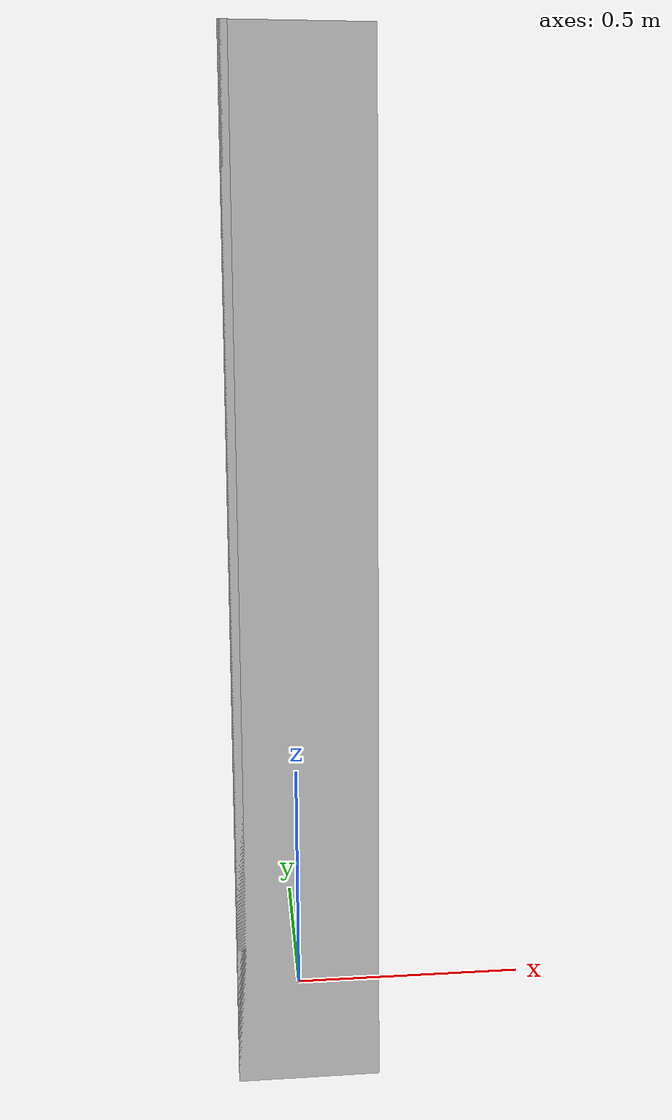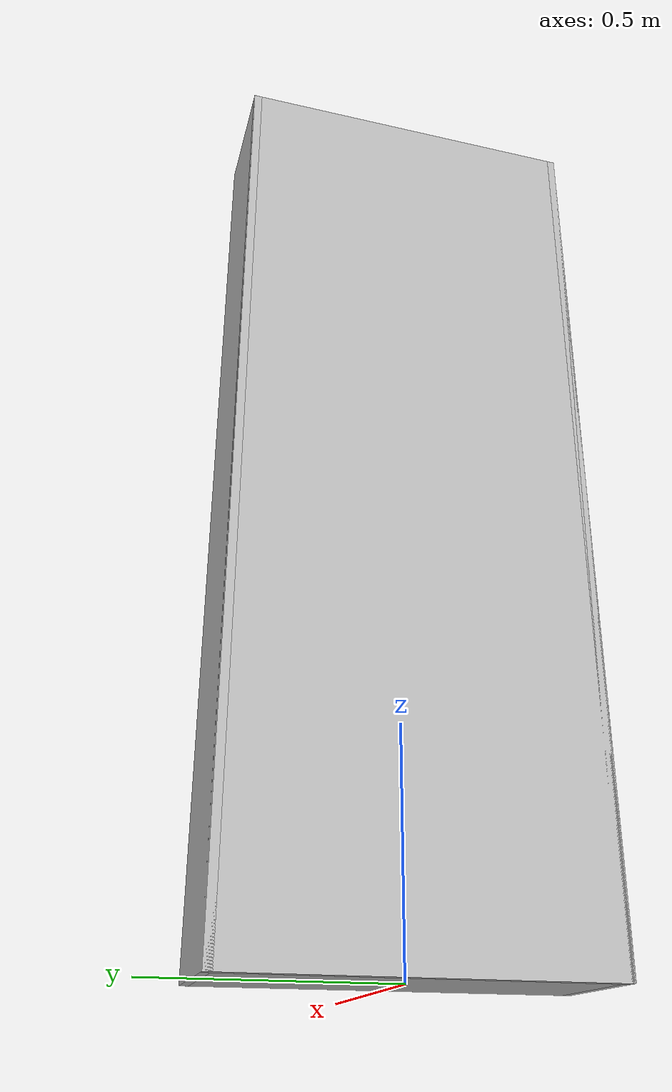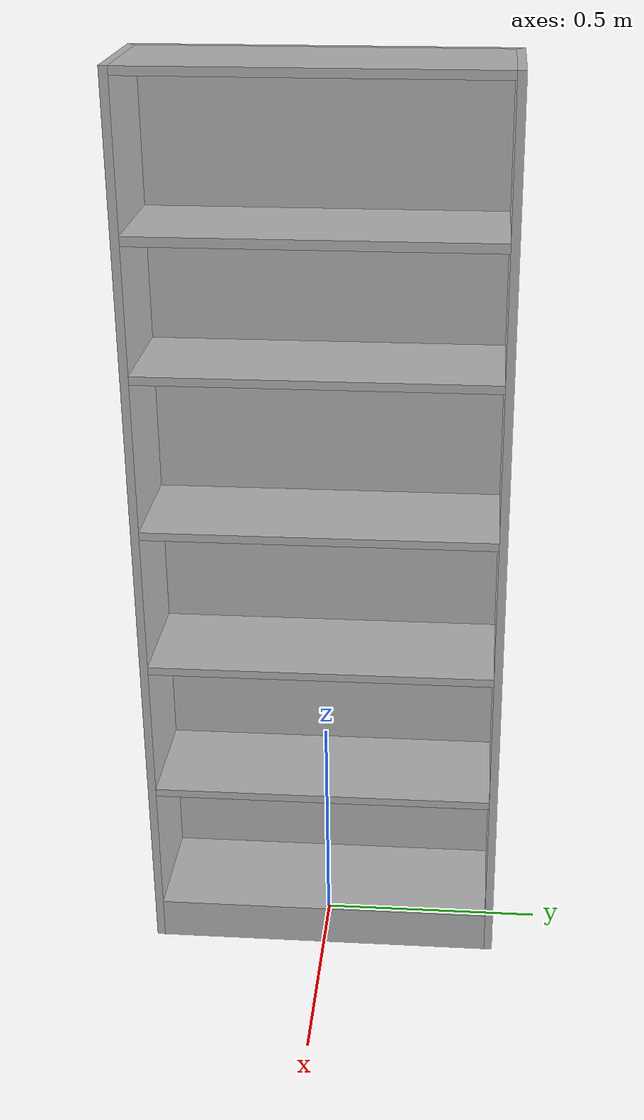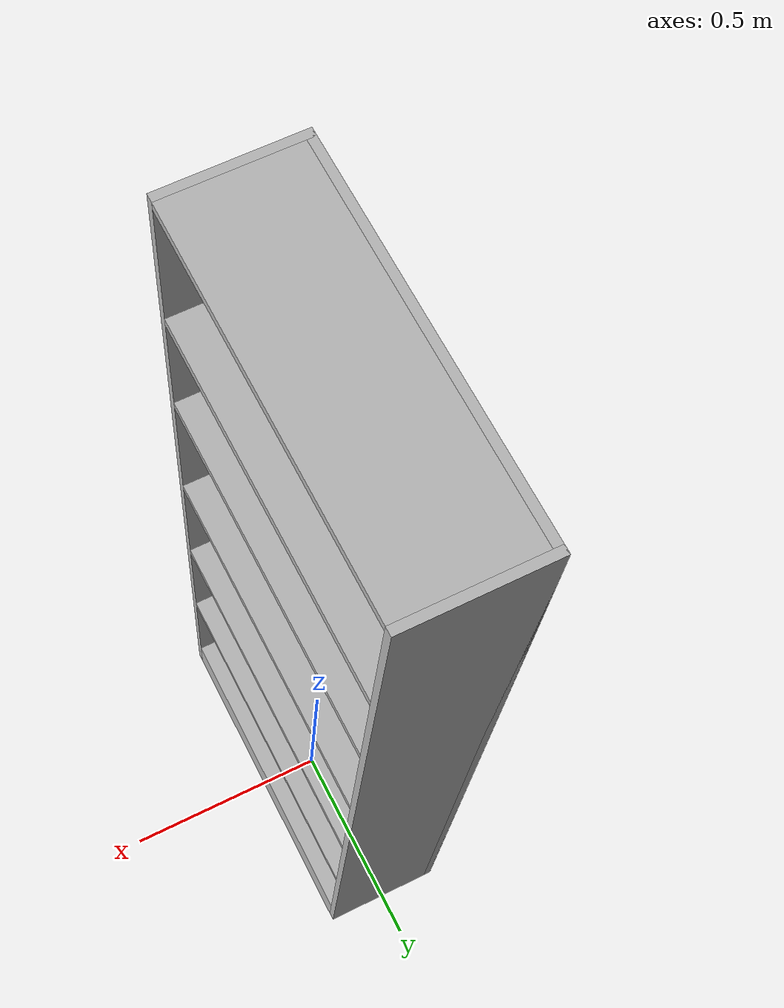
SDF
<?xml version="1.0" ?>
<sdf version="1.6">
  <model name="rwc2024/kitchen_cabinet">
    <static>true</static>
    <link name="1_link">
      <collision name="1_col">
        <geometry>
          <box>
            <size>0.28 0.018 2.02</size>
          </box>
        </geometry>
      </collision>
      <visual name="1_vis">
        <geometry>
          <box>
            <size>0.28 0.018 2.02</size>
          </box>
        </geometry>
      </visual>
      <pose>0.0 -0.391 1.01 0 0 0</pose>
    </link>
    <link name="2_link">
      <collision name="2_col">
        <geometry>
          <box>
            <size>0.28 0.018 2.02</size>
          </box>
        </geometry>
      </collision>
      <visual name="2_vis">
        <geometry>
          <box>
            <size>0.28 0.018 2.02</size>
          </box>
        </geometry>
      </visual>
      <pose>0.0 0.391 1.01 0 0 0</pose>
    </link>
    <link name="3_link">
      <collision name="3_col">
        <geometry>
          <box>
            <size>0.018 0.8 2.02</size>
          </box>
        </geometry>
      </collision>
      <visual name="3_vis">
        <geometry>
          <box>
            <size>0.018 0.8 2.02</size>
          </box>
        </geometry>
      </visual>
      <pose>-0.131 0.0 1.01 0 0 0</pose>
    </link>
    <link name="4_link">
      <collision name="4_col">
        <geometry>
          <box>
            <size>0.262 0.764 0.018</size>
          </box>
        </geometry>
      </collision>
      <visual name="4_vis">
        <geometry>
          <box>
            <size>0.262 0.764 0.018</size>
          </box>
        </geometry>
      </visual>
      <pose>0.009 0.0 2.011 0 0 0</pose>
    </link>
    <link name="5_link">
      <collision name="5_col">
        <geometry>
          <box>
            <size>0.262 0.764 0.096</size>
          </box>
        </geometry>
      </collision>
      <visual name="5_vis">
        <geometry>
          <box>
            <size>0.262 0.764 0.096</size>
          </box>
        </geometry>
      </visual>
      <pose>0.009 0.0 0.048 0 0 0</pose>
    </link>
    <link name="6_link">
      <collision name="6_col">
        <geometry>
          <box>
            <size>0.262 0.764 0.048</size>
          </box>
        </geometry>
        <pose>0.0 0.0 -0.015 0 0 0</pose>
      </collision>
      <visual name="6_vis">
        <geometry>
          <box>
            <size>0.262 0.764 0.018</size>
          </box>
        </geometry>
      </visual>
      <pose>0.009 0.0 0.404 0 0 0</pose>
    </link>
    <link name="7_link">
      <collision name="7_col">
        <geometry>
          <box>
            <size>0.262 0.764 0.048</size>
          </box>
        </geometry>
        <pose>0.0 0.0 -0.015 0 0 0</pose>
      </collision>
      <visual name="7_vis">
        <geometry>
          <box>
            <size>0.262 0.764 0.018</size>
          </box>
        </geometry>
      </visual>
      <pose>0.009 0.0 0.724 0 0 0</pose>
    </link>
    <link name="8_link">
      <collision name="8_col">
        <geometry>
          <box>
            <size>0.262 0.764 0.048</size>
          </box>
        </geometry>
        <pose>0.0 0.0 -0.015 0 0 0</pose>
      </collision>
      <visual name="8_vis">
        <geometry>
          <box>
            <size>0.262 0.764 0.018</size>
          </box>
        </geometry>
      </visual>
      <pose>0.009 0.0 1.052 0 0 0</pose>
    </link>
    <link name="9_link">
      <collision name="9_col">
        <geometry>
          <box>
            <size>0.262 0.764 0.048</size>
          </box>
        </geometry>
        <pose>0.0 0.0 -0.015 0 0 0</pose>
      </collision>
      <visual name="9_vis">
        <geometry>
          <box>
            <size>0.262 0.764 0.018</size>
          </box>
        </geometry>
      </visual>
      <pose>0.009 0.0 1.4 0 0 0</pose>
    </link>
    <link name="10_link">
      <collision name="10_col">
        <geometry>
          <box>
            <size>0.262 0.764 0.02</size>
          </box>
        </geometry>
      </collision>
      <visual name="10_vis">
        <geometry>
          <box>
            <size>0.262 0.764 0.02</size>
          </box>
        </geometry>
      </visual>
      <pose>0.009 0.0 1.687 0 0 0</pose>
    </link>
    <link name="in_front_of">
      <virtual_volume name="in_front_of_vv">
        <geometry>
          <box>
            <size>0.2 0.6 0.01</size>
          </box>
        </geometry>
        <pose>0.64 0.0 0.005 0 0 0</pose>
      </virtual_volume>
    </link>
    <link name="shelf1">
      <virtual_volume name="shelf1_vv">
        <geometry>
          <box>
            <size>0.242 0.704 0.25</size>
          </box>
        </geometry>
        <pose>0.009 0.0 0.241 0 0 0</pose>
      </virtual_volume>
    </link>
    <link name="shelf2">
      <virtual_volume name="shelf2_vv">
        <geometry>
          <box>
            <size>0.242 0.704 0.25</size>
          </box>
        </geometry>
        <pose>0.009 0.0 0.558 0 0 0</pose>
      </virtual_volume>
    </link>
    <link name="shelf3">
      <virtual_volume name="shelf3_vv">
        <geometry>
          <box>
            <size>0.242 0.704 0.25</size>
          </box>
        </geometry>
        <pose>0.009 0.0 0.878 0 0 0</pose>
      </virtual_volume>
    </link>
    <link name="shelf4">
      <virtual_volume name="shelf4_vv">
        <geometry>
          <box>
            <size>0.242 0.704 0.25</size>
          </box>
        </geometry>
        <pose>0.009 0.0 1.206 0 0 0</pose>
      </virtual_volume>
    </link>
    <link name="shelf5">
      <virtual_volume name="shelf5_vv">
        <geometry>
          <box>
            <size>0.242 0.704 0.25</size>
          </box>
        </geometry>
        <pose>0.009 0.0 1.554 0 0 0</pose>
      </virtual_volume>
    </link>
    <link name="shelf6">
      <virtual_volume name="shelf6_vv">
        <geometry>
          <box>
            <size>0.242 0.704 0.25</size>
          </box>
        </geometry>
        <pose>0.009 0.0 1.842 0 0 0</pose>
      </virtual_volume>
    </link>
  </model>
</sdf>
